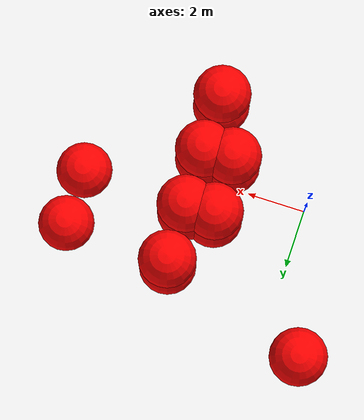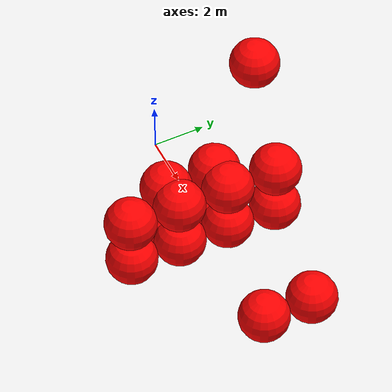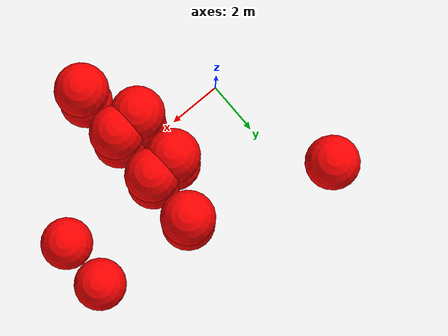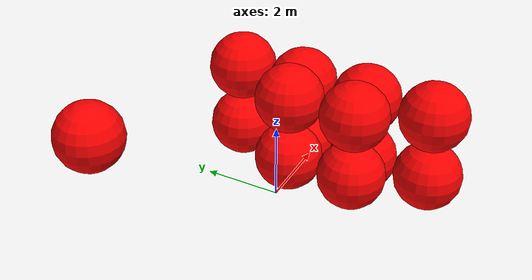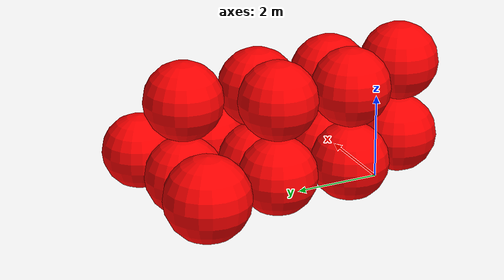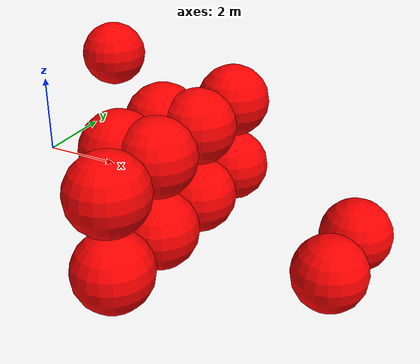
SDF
<sdf version="1.8">
 <world name="3d_world">
  <model name="obstacle_9" canonical_link="obstacle">
   <static>true</static>
   <pose relative_to="world">2.90 -0.92 -1.00 0 0 0</pose>
   <link name="obstacle">
    <pose relative_to="__model__">0.0 0 0.0 0 0 0</pose>
    <visual name="visual">
     <geometry><sphere><radius>1.00</radius></sphere></geometry>
     <material>
      <ambient>1.0 0.0 0.0 1</ambient>
      <diffuse>1.0 0.0 0.0 1</diffuse>
      <specular>1.0 0.0 0.0 1</specular>
     </material>
    </visual>
    <collision name="collision"><geometry><sphere><radius>1.00</radius></sphere></geometry></collision>
    <enable_gravity>false</enable_gravity>
   </link>
   <plugin filename="ignition-gazebo-velocity-control-system" name="ignition::gazebo::systems::VelocityControl">
    <initial_linear>0.00 0.00 0.00</initial_linear>
    <initial_angular>0 0 0</initial_angular>
   </plugin>
   <plugin filename="ignition-gazebo-odometry-publisher-system" name="ignition::gazebo::systems::OdometryPublisher">
    <dimensions>3</dimensions>
   </plugin>
  </model>
  <model name="obstacle_10" canonical_link="obstacle">
   <static>true</static>
   <pose relative_to="world">2.90 1.08 -1.00 0 0 0</pose>
   <link name="obstacle">
    <pose relative_to="__model__">0.0 0 0.0 0 0 0</pose>
    <visual name="visual">
     <geometry><sphere><radius>1.00</radius></sphere></geometry>
     <material>
      <ambient>1.0 0.0 0.0 1</ambient>
      <diffuse>1.0 0.0 0.0 1</diffuse>
      <specular>1.0 0.0 0.0 1</specular>
     </material>
    </visual>
    <collision name="collision"><geometry><sphere><radius>1.00</radius></sphere></geometry></collision>
    <enable_gravity>false</enable_gravity>
   </link>
   <plugin filename="ignition-gazebo-velocity-control-system" name="ignition::gazebo::systems::VelocityControl">
    <initial_linear>0.00 0.00 0.00</initial_linear>
    <initial_angular>0 0 0</initial_angular>
   </plugin>
   <plugin filename="ignition-gazebo-odometry-publisher-system" name="ignition::gazebo::systems::OdometryPublisher">
    <dimensions>3</dimensions>
   </plugin>
  </model>
  <model name="obstacle_11" canonical_link="obstacle">
   <static>true</static>
   <pose relative_to="world">2.90 -0.92 1.00 0 0 0</pose>
   <link name="obstacle">
    <pose relative_to="__model__">0.0 0 0.0 0 0 0</pose>
    <visual name="visual">
     <geometry><sphere><radius>1.00</radius></sphere></geometry>
     <material>
      <ambient>1.0 0.0 0.0 1</ambient>
      <diffuse>1.0 0.0 0.0 1</diffuse>
      <specular>1.0 0.0 0.0 1</specular>
     </material>
    </visual>
    <collision name="collision"><geometry><sphere><radius>1.00</radius></sphere></geometry></collision>
    <enable_gravity>false</enable_gravity>
   </link>
   <plugin filename="ignition-gazebo-velocity-control-system" name="ignition::gazebo::systems::VelocityControl">
    <initial_linear>0.00 0.00 0.00</initial_linear>
    <initial_angular>0 0 0</initial_angular>
   </plugin>
   <plugin filename="ignition-gazebo-odometry-publisher-system" name="ignition::gazebo::systems::OdometryPublisher">
    <dimensions>3</dimensions>
   </plugin>
  </model>
  <model name="obstacle_12" canonical_link="obstacle">
   <static>true</static>
   <pose relative_to="world">2.90 1.08 1.00 0 0 0</pose>
   <link name="obstacle">
    <pose relative_to="__model__">0.0 0 0.0 0 0 0</pose>
    <visual name="visual">
     <geometry><sphere><radius>1.00</radius></sphere></geometry>
     <material>
      <ambient>1.0 0.0 0.0 1</ambient>
      <diffuse>1.0 0.0 0.0 1</diffuse>
      <specular>1.0 0.0 0.0 1</specular>
     </material>
    </visual>
    <collision name="collision"><geometry><sphere><radius>1.00</radius></sphere></geometry></collision>
    <enable_gravity>false</enable_gravity>
   </link>
   <plugin filename="ignition-gazebo-velocity-control-system" name="ignition::gazebo::systems::VelocityControl">
    <initial_linear>0.00 0.00 0.00</initial_linear>
    <initial_angular>0 0 0</initial_angular>
   </plugin>
   <plugin filename="ignition-gazebo-odometry-publisher-system" name="ignition::gazebo::systems::OdometryPublisher">
    <dimensions>3</dimensions>
   </plugin>
  </model>
  <model name="obstacle_13" canonical_link="obstacle">
   <static>true</static>
   <pose relative_to="world">3.91 -2.86 -1.00 0 0 0</pose>
   <link name="obstacle">
    <pose relative_to="__model__">0.0 0 0.0 0 0 0</pose>
    <visual name="visual">
     <geometry><sphere><radius>1.00</radius></sphere></geometry>
     <material>
      <ambient>1.0 0.0 0.0 1</ambient>
      <diffuse>1.0 0.0 0.0 1</diffuse>
      <specular>1.0 0.0 0.0 1</specular>
     </material>
    </visual>
    <collision name="collision"><geometry><sphere><radius>1.00</radius></sphere></geometry></collision>
    <enable_gravity>false</enable_gravity>
   </link>
   <plugin filename="ignition-gazebo-velocity-control-system" name="ignition::gazebo::systems::VelocityControl">
    <initial_linear>0.00 0.00 0.00</initial_linear>
    <initial_angular>0 0 0</initial_angular>
   </plugin>
   <plugin filename="ignition-gazebo-odometry-publisher-system" name="ignition::gazebo::systems::OdometryPublisher">
    <dimensions>3</dimensions>
   </plugin>
  </model>
  <model name="obstacle_14" canonical_link="obstacle">
   <static>true</static>
   <pose relative_to="world">3.91 -0.86 -1.00 0 0 0</pose>
   <link name="obstacle">
    <pose relative_to="__model__">0.0 0 0.0 0 0 0</pose>
    <visual name="visual">
     <geometry><sphere><radius>1.00</radius></sphere></geometry>
     <material>
      <ambient>1.0 0.0 0.0 1</ambient>
      <diffuse>1.0 0.0 0.0 1</diffuse>
      <specular>1.0 0.0 0.0 1</specular>
     </material>
    </visual>
    <collision name="collision"><geometry><sphere><radius>1.00</radius></sphere></geometry></collision>
    <enable_gravity>false</enable_gravity>
   </link>
   <plugin filename="ignition-gazebo-velocity-control-system" name="ignition::gazebo::systems::VelocityControl">
    <initial_linear>0.00 0.00 0.00</initial_linear>
    <initial_angular>0 0 0</initial_angular>
   </plugin>
   <plugin filename="ignition-gazebo-odometry-publisher-system" name="ignition::gazebo::systems::OdometryPublisher">
    <dimensions>3</dimensions>
   </plugin>
  </model>
  <model name="obstacle_15" canonical_link="obstacle">
   <static>true</static>
   <pose relative_to="world">3.91 1.14 -1.00 0 0 0</pose>
   <link name="obstacle">
    <pose relative_to="__model__">0.0 0 0.0 0 0 0</pose>
    <visual name="visual">
     <geometry><sphere><radius>1.00</radius></sphere></geometry>
     <material>
      <ambient>1.0 0.0 0.0 1</ambient>
      <diffuse>1.0 0.0 0.0 1</diffuse>
      <specular>1.0 0.0 0.0 1</specular>
     </material>
    </visual>
    <collision name="collision"><geometry><sphere><radius>1.00</radius></sphere></geometry></collision>
    <enable_gravity>false</enable_gravity>
   </link>
   <plugin filename="ignition-gazebo-velocity-control-system" name="ignition::gazebo::systems::VelocityControl">
    <initial_linear>0.00 0.00 0.00</initial_linear>
    <initial_angular>0 0 0</initial_angular>
   </plugin>
   <plugin filename="ignition-gazebo-odometry-publisher-system" name="ignition::gazebo::systems::OdometryPublisher">
    <dimensions>3</dimensions>
   </plugin>
  </model>
  <model name="obstacle_16" canonical_link="obstacle">
   <static>true</static>
   <pose relative_to="world">3.91 3.14 -1.00 0 0 0</pose>
   <link name="obstacle">
    <pose relative_to="__model__">0.0 0 0.0 0 0 0</pose>
    <visual name="visual">
     <geometry><sphere><radius>1.00</radius></sphere></geometry>
     <material>
      <ambient>1.0 0.0 0.0 1</ambient>
      <diffuse>1.0 0.0 0.0 1</diffuse>
      <specular>1.0 0.0 0.0 1</specular>
     </material>
    </visual>
    <collision name="collision"><geometry><sphere><radius>1.00</radius></sphere></geometry></collision>
    <enable_gravity>false</enable_gravity>
   </link>
   <plugin filename="ignition-gazebo-velocity-control-system" name="ignition::gazebo::systems::VelocityControl">
    <initial_linear>0.00 0.00 0.00</initial_linear>
    <initial_angular>0 0 0</initial_angular>
   </plugin>
   <plugin filename="ignition-gazebo-odometry-publisher-system" name="ignition::gazebo::systems::OdometryPublisher">
    <dimensions>3</dimensions>
   </plugin>
  </model>
  <model name="obstacle_17" canonical_link="obstacle">
   <static>true</static>
   <pose relative_to="world">3.91 -2.86 1.00 0 0 0</pose>
   <link name="obstacle">
    <pose relative_to="__model__">0.0 0 0.0 0 0 0</pose>
    <visual name="visual">
     <geometry><sphere><radius>1.00</radius></sphere></geometry>
     <material>
      <ambient>1.0 0.0 0.0 1</ambient>
      <diffuse>1.0 0.0 0.0 1</diffuse>
      <specular>1.0 0.0 0.0 1</specular>
     </material>
    </visual>
    <collision name="collision"><geometry><sphere><radius>1.00</radius></sphere></geometry></collision>
    <enable_gravity>false</enable_gravity>
   </link>
   <plugin filename="ignition-gazebo-velocity-control-system" name="ignition::gazebo::systems::VelocityControl">
    <initial_linear>0.00 0.00 0.00</initial_linear>
    <initial_angular>0 0 0</initial_angular>
   </plugin>
   <plugin filename="ignition-gazebo-odometry-publisher-system" name="ignition::gazebo::systems::OdometryPublisher">
    <dimensions>3</dimensions>
   </plugin>
  </model>
  <model name="obstacle_18" canonical_link="obstacle">
   <static>true</static>
   <pose relative_to="world">3.91 -0.86 1.00 0 0 0</pose>
   <link name="obstacle">
    <pose relative_to="__model__">0.0 0 0.0 0 0 0</pose>
    <visual name="visual">
     <geometry><sphere><radius>1.00</radius></sphere></geometry>
     <material>
      <ambient>1.0 0.0 0.0 1</ambient>
      <diffuse>1.0 0.0 0.0 1</diffuse>
      <specular>1.0 0.0 0.0 1</specular>
     </material>
    </visual>
    <collision name="collision"><geometry><sphere><radius>1.00</radius></sphere></geometry></collision>
    <enable_gravity>false</enable_gravity>
   </link>
   <plugin filename="ignition-gazebo-velocity-control-system" name="ignition::gazebo::systems::VelocityControl">
    <initial_linear>0.00 0.00 0.00</initial_linear>
    <initial_angular>0 0 0</initial_angular>
   </plugin>
   <plugin filename="ignition-gazebo-odometry-publisher-system" name="ignition::gazebo::systems::OdometryPublisher">
    <dimensions>3</dimensions>
   </plugin>
  </model>
  <model name="obstacle_19" canonical_link="obstacle">
   <static>true</static>
   <pose relative_to="world">3.91 1.14 1.00 0 0 0</pose>
   <link name="obstacle">
    <pose relative_to="__model__">0.0 0 0.0 0 0 0</pose>
    <visual name="visual">
     <geometry><sphere><radius>1.00</radius></sphere></geometry>
     <material>
      <ambient>1.0 0.0 0.0 1</ambient>
      <diffuse>1.0 0.0 0.0 1</diffuse>
      <specular>1.0 0.0 0.0 1</specular>
     </material>
    </visual>
    <collision name="collision"><geometry><sphere><radius>1.00</radius></sphere></geometry></collision>
    <enable_gravity>false</enable_gravity>
   </link>
   <plugin filename="ignition-gazebo-velocity-control-system" name="ignition::gazebo::systems::VelocityControl">
    <initial_linear>0.00 0.00 0.00</initial_linear>
    <initial_angular>0 0 0</initial_angular>
   </plugin>
   <plugin filename="ignition-gazebo-odometry-publisher-system" name="ignition::gazebo::systems::OdometryPublisher">
    <dimensions>3</dimensions>
   </plugin>
  </model>
  <model name="obstacle_20" canonical_link="obstacle">
   <static>true</static>
   <pose relative_to="world">3.91 3.14 1.00 0 0 0</pose>
   <link name="obstacle">
    <pose relative_to="__model__">0.0 0 0.0 0 0 0</pose>
    <visual name="visual">
     <geometry><sphere><radius>1.00</radius></sphere></geometry>
     <material>
      <ambient>1.0 0.0 0.0 1</ambient>
      <diffuse>1.0 0.0 0.0 1</diffuse>
      <specular>1.0 0.0 0.0 1</specular>
     </material>
    </visual>
    <collision name="collision"><geometry><sphere><radius>1.00</radius></sphere></geometry></collision>
    <enable_gravity>false</enable_gravity>
   </link>
   <plugin filename="ignition-gazebo-velocity-control-system" name="ignition::gazebo::systems::VelocityControl">
    <initial_linear>0.00 0.00 0.00</initial_linear>
    <initial_angular>0 0 0</initial_angular>
   </plugin>
   <plugin filename="ignition-gazebo-odometry-publisher-system" name="ignition::gazebo::systems::OdometryPublisher">
    <dimensions>3</dimensions>
   </plugin>
  </model>
  <model name="obstacle_26" canonical_link="obstacle">
   <static>true</static>
   <pose relative_to="world">-1.32 4.91 1.00 0 0 0</pose>
   <link name="obstacle">
    <pose relative_to="__model__">0.0 0 0.0 0 0 0</pose>
    <visual name="visual">
     <geometry><sphere><radius>1.00</radius></sphere></geometry>
     <material>
      <ambient>1.0 0.0 0.0 1</ambient>
      <diffuse>1.0 0.0 0.0 1</diffuse>
      <specular>1.0 0.0 0.0 1</specular>
     </material>
    </visual>
    <collision name="collision"><geometry><sphere><radius>1.00</radius></sphere></geometry></collision>
    <enable_gravity>false</enable_gravity>
   </link>
   <plugin filename="ignition-gazebo-velocity-control-system" name="ignition::gazebo::systems::VelocityControl">
    <initial_linear>0.00 0.00 0.00</initial_linear>
    <initial_angular>0 0 0</initial_angular>
   </plugin>
   <plugin filename="ignition-gazebo-odometry-publisher-system" name="ignition::gazebo::systems::OdometryPublisher">
    <dimensions>3</dimensions>
   </plugin>
  </model>
  <model name="obstacle_27" canonical_link="obstacle">
   <static>false</static>
   <pose relative_to="world">7.85 0.69 -2.00 0 0 0</pose>
   <link name="obstacle">
    <pose relative_to="__model__">0.0 0 0.0 0 0 0</pose>
    <visual name="visual">
     <geometry><sphere><radius>1.00</radius></sphere></geometry>
     <material>
      <ambient>1.0 0.0 0.0 1</ambient>
      <diffuse>1.0 0.0 0.0 1</diffuse>
      <specular>1.0 0.0 0.0 1</specular>
     </material>
    </visual>
    <collision name="collision"><geometry><sphere><radius>1.00</radius></sphere></geometry></collision>
    <enable_gravity>false</enable_gravity>
   </link>
   <plugin filename="ignition-gazebo-velocity-control-system" name="ignition::gazebo::systems::VelocityControl">
    <initial_linear>0.00 -1.19 1.15</initial_linear>
    <initial_angular>0 0 0</initial_angular>
   </plugin>
   <plugin filename="ignition-gazebo-odometry-publisher-system" name="ignition::gazebo::systems::OdometryPublisher">
    <dimensions>3</dimensions>
   </plugin>
  </model>
  <model name="obstacle_28" canonical_link="obstacle">
   <static>false</static>
   <pose relative_to="world">7.85 2.69 -2.00 0 0 0</pose>
   <link name="obstacle">
    <pose relative_to="__model__">0.0 0 0.0 0 0 0</pose>
    <visual name="visual">
     <geometry><sphere><radius>1.00</radius></sphere></geometry>
     <material>
      <ambient>1.0 0.0 0.0 1</ambient>
      <diffuse>1.0 0.0 0.0 1</diffuse>
      <specular>1.0 0.0 0.0 1</specular>
     </material>
    </visual>
    <collision name="collision"><geometry><sphere><radius>1.00</radius></sphere></geometry></collision>
    <enable_gravity>false</enable_gravity>
   </link>
   <plugin filename="ignition-gazebo-velocity-control-system" name="ignition::gazebo::systems::VelocityControl">
    <initial_linear>0.00 -1.19 1.15</initial_linear>
    <initial_angular>0 0 0</initial_angular>
   </plugin>
   <plugin filename="ignition-gazebo-odometry-publisher-system" name="ignition::gazebo::systems::OdometryPublisher">
    <dimensions>3</dimensions>
   </plugin>
  </model>
 </world>
</sdf>
